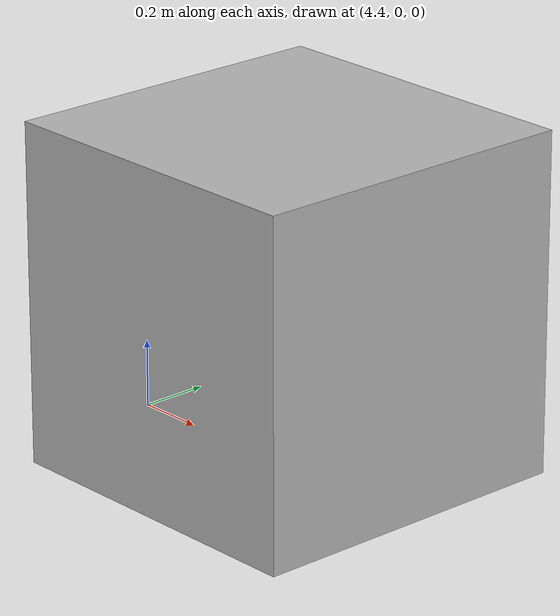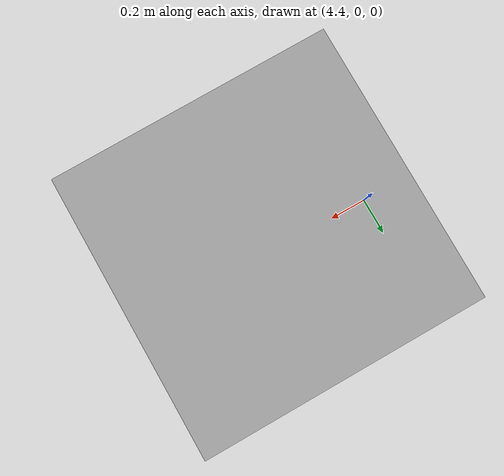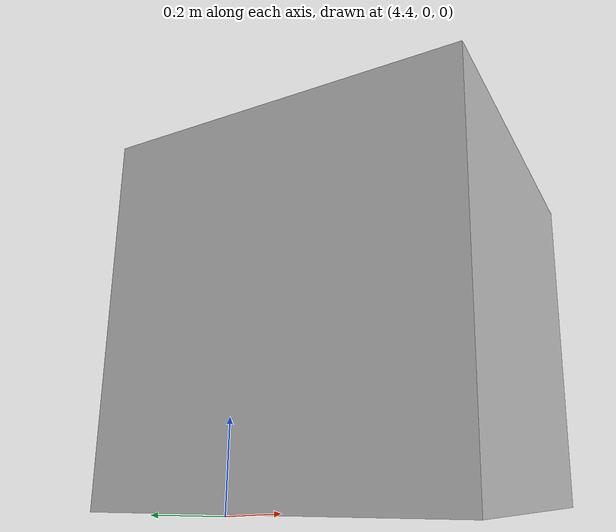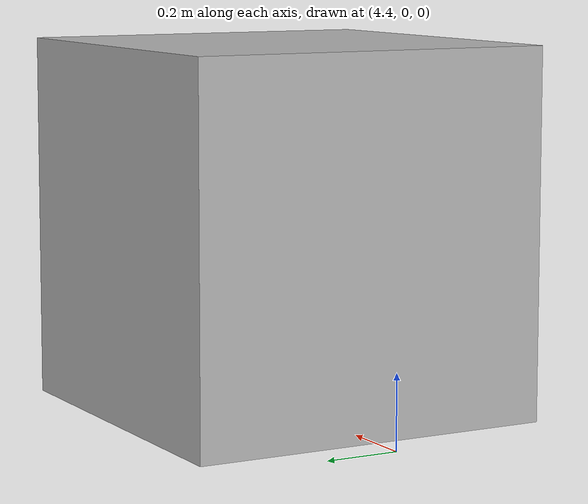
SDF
<?xml version="1.0" ?>
<sdf version="1.7">
  <model name="box_with_frame_semantics">
    <pose>0 0 0.5 0 0 0</pose>
    <frame name="offset">
      <pose>5 0 0 0 0 0</pose>
    </frame>
    <link name="L1">
      <pose>0 0 1 0 0 0</pose>
      <collision name="C">
        <pose relative_to="offset"/>
        <geometry>
          <box>
            <size>1 1 1</size>
          </box>
        </geometry>
      </collision>
      <visual name="V">
        <pose relative_to="offset"/>
        <geometry>
          <box>
            <size>1 1 1</size>
          </box>
        </geometry>
      </visual>
    </link>
    <link name="L2">
      <pose relative_to="L1">0 5 0 0 0 0</pose>
      <collision name="C">
        <pose relative_to="offset"/>
        <geometry>
          <box>
            <size>1 1 1</size>
          </box>
        </geometry>
      </collision>
      <visual name="V">
        <pose relative_to="offset"/>
        <geometry>
          <box>
            <size>1 1 1</size>
          </box>
        </geometry>
      </visual>
    </link>
  </model>
</sdf>
